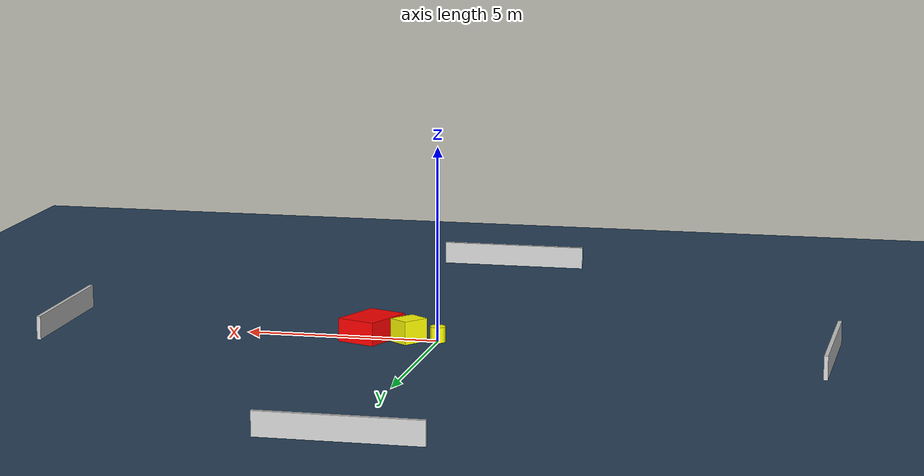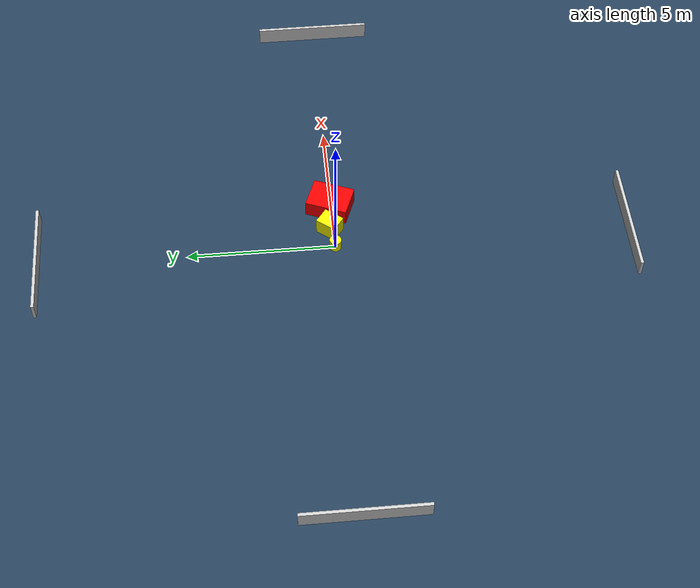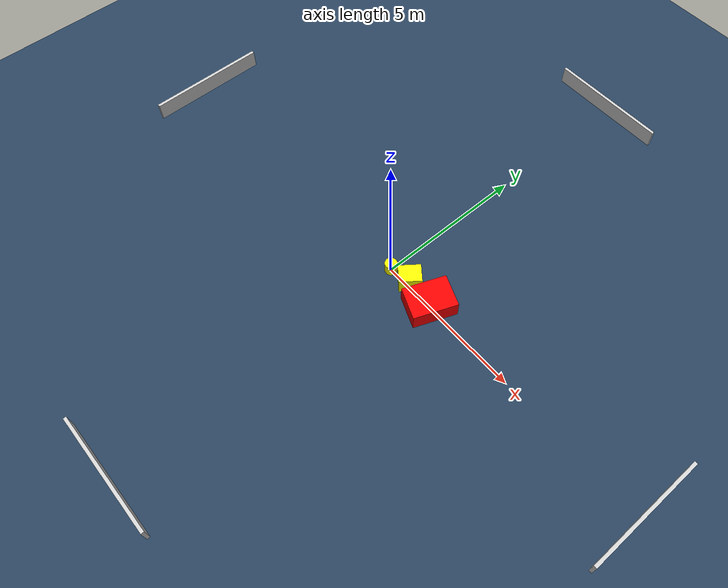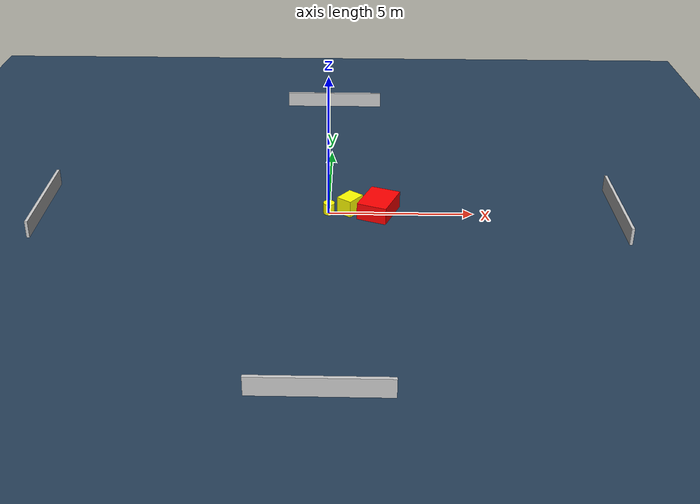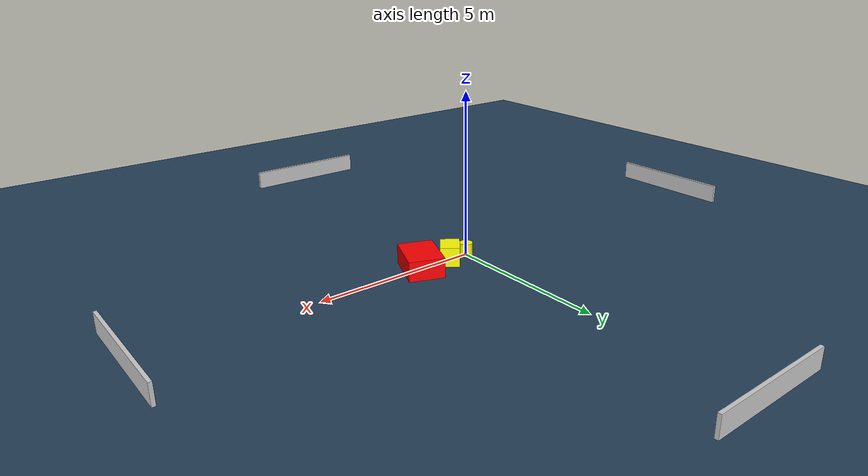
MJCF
<?xml version="1.0" ?>
<mujoco model="generated_environment">
  <option timestep="0.01" integrator="RK4" cone="elliptic"/>
  <default>
    <geom density="1"/>
  </default>
  <asset>
    <texture builtin="gradient" height="3072" name="skybox" rgb1="0.3 0.5 0.7" rgb2="0 0 0" type="skybox" width="512"/>
    <texture builtin="checker" height="300" name="groundplane" rgb1="0.2 0.3 0.4" rgb2="0.1 0.2 0.3" type="2d" width="300"/>
    <material name="groundplane" reflectance="0.2" texrepeat="5 5" texture="groundplane"/>
  </asset>
  <worldbody>
    <light dir="0 0 -1" directional="true" pos="0 0 1.5"/>
    <geom condim="3" friction="0.5 0.005 0.001" material="groundplane" name="floor" pos="0 0 0" size="0 0 0.05" type="plane"/>
    <body name="walls">
      <geom name="wall_1" condim="4" pos="-10.0 0.0 0.3" rgba="0.800000011920929 0.800000011920929 0.800000011920929 1.0" size="0.05 2.0 0.3" type="box"/>
      <geom name="wall_2" condim="4" pos="10.0 0.0 0.3" rgba="0.800000011920929 0.800000011920929 0.800000011920929 1.0" size="0.05 2.0 0.3" type="box"/>
      <geom name="wall_3" condim="4" pos="0.0 -10.0 0.3" rgba="0.800000011920929 0.800000011920929 0.800000011920929 1.0" size="2.0 0.05 0.3" type="box"/>
      <geom name="wall_4" condim="4" pos="0.0 10.0 0.3" rgba="0.800000011920929 0.800000011920929 0.800000011920929 1.0" size="2.0 0.05 0.3" type="box"/>
    </body>
    <body name="robot">
      <joint name="joint_x" type="slide" pos="0 0 0" axis="1 0 0"/>
      <joint name="joint_y" type="slide" pos="0 0 0" axis="0 1 0"/>
      <geom name="robot" type="cylinder" pos="0.0 0.0 0.2" size="0.2 0.2 0.0" mass="5.0" friction="1.0 0.005 0.0001" condim="4" rgba="1.0 1.0 0.0 1.0"/>
    </body>
    <body name="obstacle_1_movable">
      <geom name="obstacle_1_movable" condim="4" pos="0.7279156693842365 0.1265205014277365 0.3" euler="0 0 322.308923180595" friction="0.0 0.005 0.001" rgba="1.0 1.0 0.0 1.0" size="0.2926701099056847 0.3584943917922859 0.3" type="box" mass="0.1"/>
      <joint type="free"/>
    </body>
    <body name="obstacle_2_static">
      <geom name="obstacle_2_static" condim="4" pos="1.7233602185137873 0.03608858396186105 0.3" euler="0 0 338.24285605040325" friction="0.0 0.005 0.001" rgba="1.0 0.0 0.0 1.0" size="0.5287959070745294 0.716359034554555 0.3" type="box"/>
    </body>
  </worldbody>
  <actuator>
    <motor name="actuator_x" joint="joint_x" gear="1" ctrlrange="-1 1"/>
    <motor name="actuator_y" joint="joint_y" gear="1" ctrlrange="-1 1"/>
  </actuator>
</mujoco>
